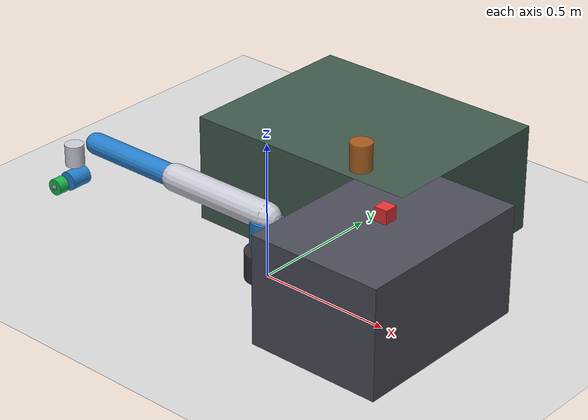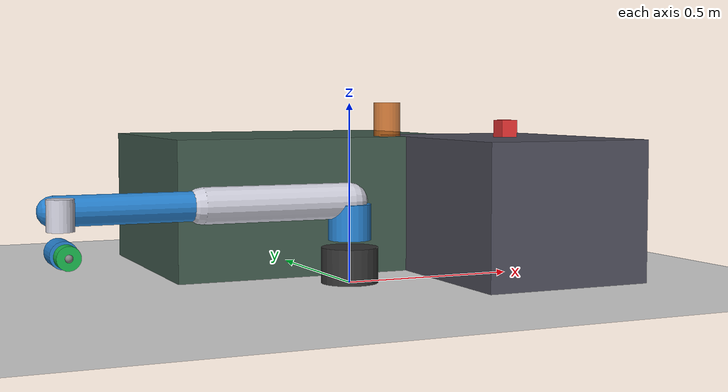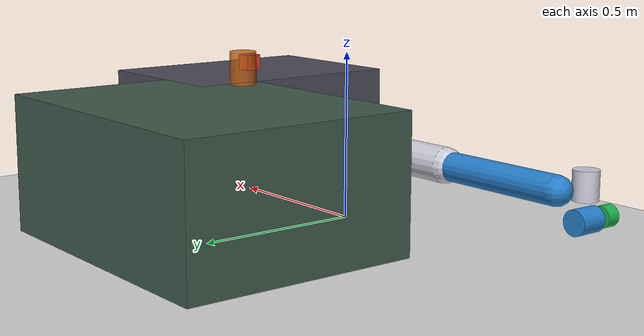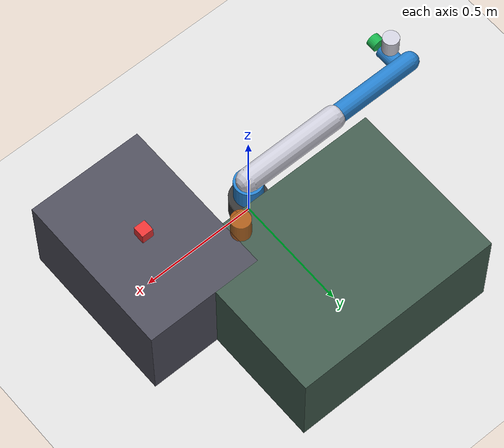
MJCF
<mujoco model="digital_twin_robot">
  <compiler angle="radian" coordinate="local"/>
  <option gravity="0 0 -9.81" timestep="0.002" iterations="100"/>

  <visual>
    <headlight ambient="0.6 0.6 0.6"/>
  </visual>

  <default>
    <joint damping="1.5" armature="0.1"/>
    <geom friction="1.0 0.005 0.0001" solref="0.01 1"/>
  </default>

  <equality>
    <weld name="gripper_weld" body1="end_effector" body2="workpiece" active="false" solref="0.02 1" solimp="0.9 0.95 0.001"/>
  </equality>

  <contact>
    <exclude body1="base_link" body2="link1"/>
    <exclude body1="link1" body2="link2"/>
    <exclude body1="link2" body2="link3"/>
    <exclude body1="link3" body2="link4"/>
    <exclude body1="link4" body2="link5"/>
    <exclude body1="link5" body2="end_effector"/>
  </contact>

  <worldbody>
    <geom name="floor" type="plane" size="2 2 0.05" rgba="0.85 0.85 0.85 1"/>
    <light directional="true" pos="0 0 3" dir="0 0 -1"/>

    <!-- Robot Arm -->
    <body name="base_link" pos="0 0 0.05">
      <geom name="base_geom" type="cylinder" size="0.08 0.05" rgba="0.2 0.2 0.2 1"/>

      <body name="link1" pos="0 0 0.12">
        <joint name="joint1" type="hinge" axis="0 0 1" range="-6.283 6.283"/>
        <geom name="link1_geom" type="cylinder" size="0.06 0.05" rgba="0.15 0.5 0.8 1" mass="4.0"/>

        <body name="link2" pos="0 0 0.06" quat="0.7071 0.7071 0 0">
          <joint name="joint2" type="hinge" axis="0 0 1" range="-3.1415 3.1415"/>
          <geom name="link2_geom" type="capsule" fromto="0 0 0 -0.425 0 0" size="0.05" rgba="0.8 0.8 0.85 1" mass="8.0"/>

          <body name="link3" pos="-0.425 0 0">
            <joint name="joint3" type="hinge" axis="0 0 1" range="-3.1415 3.1415"/>
            <geom name="link3_geom" type="capsule" fromto="0 0 0 -0.392 0 0" size="0.04" rgba="0.15 0.5 0.8 1" mass="3.0"/>

            <body name="link4" pos="-0.392 0 0.109" quat="0.7071 0.7071 0 0">
              <joint name="joint4" type="hinge" axis="0 0 1" range="-6.283 6.283"/>
              <geom name="link4_geom" type="cylinder" size="0.035 0.04" rgba="0.8 0.8 0.85 1" mass="1.5"/>

              <body name="link5" pos="0 0 0.094" quat="0.7071 -0.7071 0 0">
                <joint name="joint5" type="hinge" axis="0 0 1" range="-6.283 6.283"/>
                <geom name="link5_geom" type="cylinder" size="0.035 0.04" rgba="0.15 0.5 0.8 1" mass="1.2"/>

                <body name="end_effector" pos="0 0 0.082">
                  <joint name="joint6" type="hinge" axis="0 0 1" range="-6.283 6.283"/>
                  <geom name="ee_geom" type="cylinder" size="0.03 0.02" rgba="0.1 0.7 0.3 1" mass="0.8"/>
                  <site name="ee_site" pos="0 0 0.02" size="0.01"/>
                  <camera name="eye_in_hand" pos="0 0 0.03" quat="0 1 0 0" fovy="60" mode="fixed"/>
                </body>
              </body>
            </body>
          </body>
        </body>
      </body>
    </body>

    <!-- Worktable (Pick Station) -->
    <body name="worktable" pos="0.5 0 0.2">
      <geom name="table_top" type="box" size="0.25 0.35 0.2" rgba="0.3 0.3 0.35 1"/>
    </body>

    <!-- Droptable (Drop Station) -->
    <body name="droptable" pos="0.0 0.5 0.2">
      <geom name="droptable_top" type="box" size="0.45 0.35 0.2" rgba="0.25 0.35 0.3 1"/>
    </body>

    <!-- Obstacle Pillar (Zone with potential field repulsion) -->
    <body name="obstacle_zone" pos="0.22 0.22 0.35">
      <geom name="obstacle_geom" type="cylinder" size="0.04 0.15" rgba="0.8 0.4 0.1 0.8"/>
    </body>

    <!-- Workpiece -->
    <body name="workpiece" pos="0.5 0 0.425">
      <freejoint name="workpiece_joint"/>
      <geom name="workpiece_geom" type="box" size="0.025 0.025 0.025" rgba="0.9 0.2 0.2 1" mass="0.05"/>
    </body>
  </worldbody>

  <actuator>
    <motor name="actuator1" joint="joint1" gear="1" ctrllimited="true" ctrlrange="-300 300"/>
    <motor name="actuator2" joint="joint2" gear="1" ctrllimited="true" ctrlrange="-300 300"/>
    <motor name="actuator3" joint="joint3" gear="1" ctrllimited="true" ctrlrange="-300 300"/>
    <motor name="actuator4" joint="joint4" gear="1" ctrllimited="true" ctrlrange="-200 200"/>
    <motor name="actuator5" joint="joint5" gear="1" ctrllimited="true" ctrlrange="-200 200"/>
    <motor name="actuator6" joint="joint6" gear="1" ctrllimited="true" ctrlrange="-200 200"/>
  </actuator>
</mujoco>
